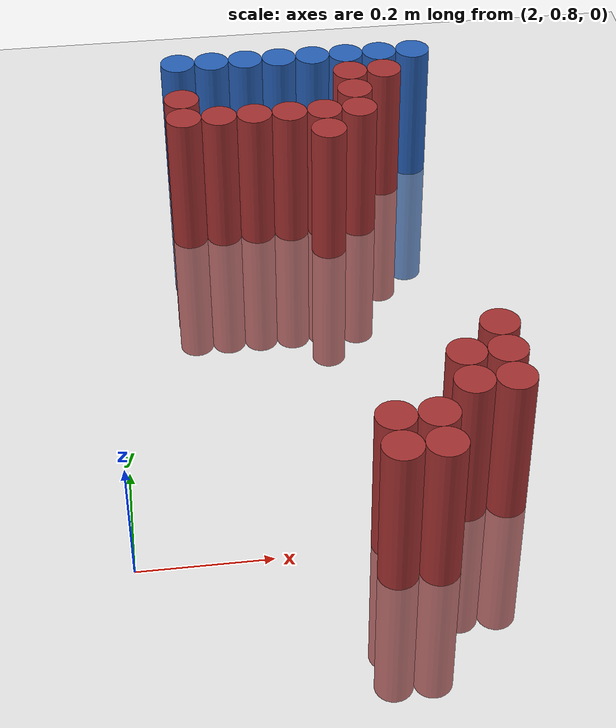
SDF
<sdf version="1.6">
 <world name="default">
  <model name="ground_plane">
   <static>1</static>
   <link name="link">
    <collision name="collision">
     <geometry><plane><normal>0 0 1</normal><size>100 100</size></plane></geometry>
     <surface><friction><ode><mu>100</mu><mu2>50</mu2></ode></friction></surface>
    </collision>
    <visual name="visual">
     <cast_shadows>0</cast_shadows>
     <geometry><plane><normal>0 0 1</normal><size>100 100</size></plane></geometry>
     <material>
      <script><uri>file://media/materials/scripts/gazebo.material</uri><name>Gazebo/Grey</name></script>
     </material>
    </visual>
   </link>
  </model>
  <model name="unit_cylinder_96">
   <static>1</static>
   <pose>2.130000 1.770000 0.000000 0.000000 0.000000 0.000000</pose>
   <link name="link">
    <inertial>
     <mass>1</mass>
     <inertia><ixx>0.145833</ixx><ixy>0</ixy><ixz>0</ixz><iyy>0.145833</iyy><iyz>0</iyz><izz>0.125</izz></inertia>
    </inertial>
    <collision name="collision">
     <geometry><cylinder><radius>0.030000</radius><length>0.5</length></cylinder></geometry>
    </collision>
    <visual name="visual">
     <geometry><cylinder><radius>0.030000</radius><length>0.5</length></cylinder></geometry>
     <material>
      <ambient>0.152000 0.379000 0.720000 1</ambient>
      <diffuse>0.152000 0.379000 0.720000 1</diffuse>
     </material>
     <material>
      <script><name>Gazebo/Grey</name><uri>file://media/materials/scripts/gazebo.material</uri></script>
     </material>
    </visual>
   </link>
  </model>
  <model name="unit_cylinder_97">
   <static>1</static>
   <pose>2.190000 1.770000 0.000000 0.000000 0.000000 0.000000</pose>
   <link name="link">
    <inertial>
     <mass>1</mass>
     <inertia><ixx>0.145833</ixx><ixy>0</ixy><ixz>0</ixz><iyy>0.145833</iyy><iyz>0</iyz><izz>0.125</izz></inertia>
    </inertial>
    <collision name="collision">
     <geometry><cylinder><radius>0.030000</radius><length>0.5</length></cylinder></geometry>
    </collision>
    <visual name="visual">
     <geometry><cylinder><radius>0.030000</radius><length>0.5</length></cylinder></geometry>
     <material>
      <ambient>0.152000 0.379000 0.720000 1</ambient>
      <diffuse>0.152000 0.379000 0.720000 1</diffuse>
     </material>
     <material>
      <script><name>Gazebo/Grey</name><uri>file://media/materials/scripts/gazebo.material</uri></script>
     </material>
    </visual>
   </link>
  </model>
  <model name="unit_cylinder_98">
   <static>1</static>
   <pose>2.250000 1.770000 0.000000 0.000000 0.000000 0.000000</pose>
   <link name="link">
    <inertial>
     <mass>1</mass>
     <inertia><ixx>0.145833</ixx><ixy>0</ixy><ixz>0</ixz><iyy>0.145833</iyy><iyz>0</iyz><izz>0.125</izz></inertia>
    </inertial>
    <collision name="collision">
     <geometry><cylinder><radius>0.030000</radius><length>0.5</length></cylinder></geometry>
    </collision>
    <visual name="visual">
     <geometry><cylinder><radius>0.030000</radius><length>0.5</length></cylinder></geometry>
     <material>
      <ambient>0.152000 0.379000 0.720000 1</ambient>
      <diffuse>0.152000 0.379000 0.720000 1</diffuse>
     </material>
     <material>
      <script><name>Gazebo/Grey</name><uri>file://media/materials/scripts/gazebo.material</uri></script>
     </material>
    </visual>
   </link>
  </model>
  <model name="unit_cylinder_99">
   <static>1</static>
   <pose>2.310000 1.770000 0.000000 0.000000 0.000000 0.000000</pose>
   <link name="link">
    <inertial>
     <mass>1</mass>
     <inertia><ixx>0.145833</ixx><ixy>0</ixy><ixz>0</ixz><iyy>0.145833</iyy><iyz>0</iyz><izz>0.125</izz></inertia>
    </inertial>
    <collision name="collision">
     <geometry><cylinder><radius>0.030000</radius><length>0.5</length></cylinder></geometry>
    </collision>
    <visual name="visual">
     <geometry><cylinder><radius>0.030000</radius><length>0.5</length></cylinder></geometry>
     <material>
      <ambient>0.152000 0.379000 0.720000 1</ambient>
      <diffuse>0.152000 0.379000 0.720000 1</diffuse>
     </material>
     <material>
      <script><name>Gazebo/Grey</name><uri>file://media/materials/scripts/gazebo.material</uri></script>
     </material>
    </visual>
   </link>
  </model>
  <model name="unit_cylinder_100">
   <static>1</static>
   <pose>2.370000 1.770000 0.000000 0.000000 0.000000 0.000000</pose>
   <link name="link">
    <inertial>
     <mass>1</mass>
     <inertia><ixx>0.145833</ixx><ixy>0</ixy><ixz>0</ixz><iyy>0.145833</iyy><iyz>0</iyz><izz>0.125</izz></inertia>
    </inertial>
    <collision name="collision">
     <geometry><cylinder><radius>0.030000</radius><length>0.5</length></cylinder></geometry>
    </collision>
    <visual name="visual">
     <geometry><cylinder><radius>0.030000</radius><length>0.5</length></cylinder></geometry>
     <material>
      <ambient>0.152000 0.379000 0.720000 1</ambient>
      <diffuse>0.152000 0.379000 0.720000 1</diffuse>
     </material>
     <material>
      <script><name>Gazebo/Grey</name><uri>file://media/materials/scripts/gazebo.material</uri></script>
     </material>
    </visual>
   </link>
  </model>
  <model name="unit_cylinder_101">
   <static>1</static>
   <pose>2.430000 1.770000 0.000000 0.000000 0.000000 0.000000</pose>
   <link name="link">
    <inertial>
     <mass>1</mass>
     <inertia><ixx>0.145833</ixx><ixy>0</ixy><ixz>0</ixz><iyy>0.145833</iyy><iyz>0</iyz><izz>0.125</izz></inertia>
    </inertial>
    <collision name="collision">
     <geometry><cylinder><radius>0.030000</radius><length>0.5</length></cylinder></geometry>
    </collision>
    <visual name="visual">
     <geometry><cylinder><radius>0.030000</radius><length>0.5</length></cylinder></geometry>
     <material>
      <ambient>0.152000 0.379000 0.720000 1</ambient>
      <diffuse>0.152000 0.379000 0.720000 1</diffuse>
     </material>
     <material>
      <script><name>Gazebo/Grey</name><uri>file://media/materials/scripts/gazebo.material</uri></script>
     </material>
    </visual>
   </link>
  </model>
  <model name="unit_cylinder_102">
   <static>1</static>
   <pose>2.490000 1.770000 0.000000 0.000000 0.000000 0.000000</pose>
   <link name="link">
    <inertial>
     <mass>1</mass>
     <inertia><ixx>0.145833</ixx><ixy>0</ixy><ixz>0</ixz><iyy>0.145833</iyy><iyz>0</iyz><izz>0.125</izz></inertia>
    </inertial>
    <collision name="collision">
     <geometry><cylinder><radius>0.030000</radius><length>0.5</length></cylinder></geometry>
    </collision>
    <visual name="visual">
     <geometry><cylinder><radius>0.030000</radius><length>0.5</length></cylinder></geometry>
     <material>
      <ambient>0.152000 0.379000 0.720000 1</ambient>
      <diffuse>0.152000 0.379000 0.720000 1</diffuse>
     </material>
     <material>
      <script><name>Gazebo/Grey</name><uri>file://media/materials/scripts/gazebo.material</uri></script>
     </material>
    </visual>
   </link>
  </model>
  <model name="unit_cylinder_103">
   <static>1</static>
   <pose>2.550000 1.770000 0.000000 0.000000 0.000000 0.000000</pose>
   <link name="link">
    <inertial>
     <mass>1</mass>
     <inertia><ixx>0.145833</ixx><ixy>0</ixy><ixz>0</ixz><iyy>0.145833</iyy><iyz>0</iyz><izz>0.125</izz></inertia>
    </inertial>
    <collision name="collision">
     <geometry><cylinder><radius>0.030000</radius><length>0.5</length></cylinder></geometry>
    </collision>
    <visual name="visual">
     <geometry><cylinder><radius>0.030000</radius><length>0.5</length></cylinder></geometry>
     <material>
      <ambient>0.152000 0.379000 0.720000 1</ambient>
      <diffuse>0.152000 0.379000 0.720000 1</diffuse>
     </material>
     <material>
      <script><name>Gazebo/Grey</name><uri>file://media/materials/scripts/gazebo.material</uri></script>
     </material>
    </visual>
   </link>
  </model>
  <model name="unit_cylinder_126">
   <static>1</static>
   <pose>2.430000 1.710000 0.000000 0.000000 0.000000 0.000000</pose>
   <link name="link">
    <inertial>
     <mass>1</mass>
     <inertia><ixx>0.145833</ixx><ixy>0</ixy><ixz>0</ixz><iyy>0.145833</iyy><iyz>0</iyz><izz>0.125</izz></inertia>
    </inertial>
    <collision name="collision">
     <geometry><cylinder><radius>0.030000</radius><length>0.5</length></cylinder></geometry>
    </collision>
    <visual name="visual">
     <geometry><cylinder><radius>0.030000</radius><length>0.5</length></cylinder></geometry>
     <material>
      <ambient>0.648000 0.192000 0.192000 1</ambient>
      <diffuse>0.648000 0.192000 0.192000 1</diffuse>
     </material>
     <material>
      <script><name>Gazebo/Grey</name><uri>file://media/materials/scripts/gazebo.material</uri></script>
     </material>
    </visual>
   </link>
  </model>
  <model name="unit_cylinder_127">
   <static>1</static>
   <pose>2.490000 1.710000 0.000000 0.000000 0.000000 0.000000</pose>
   <link name="link">
    <inertial>
     <mass>1</mass>
     <inertia><ixx>0.145833</ixx><ixy>0</ixy><ixz>0</ixz><iyy>0.145833</iyy><iyz>0</iyz><izz>0.125</izz></inertia>
    </inertial>
    <collision name="collision">
     <geometry><cylinder><radius>0.030000</radius><length>0.5</length></cylinder></geometry>
    </collision>
    <visual name="visual">
     <geometry><cylinder><radius>0.030000</radius><length>0.5</length></cylinder></geometry>
     <material>
      <ambient>0.648000 0.192000 0.192000 1</ambient>
      <diffuse>0.648000 0.192000 0.192000 1</diffuse>
     </material>
     <material>
      <script><name>Gazebo/Grey</name><uri>file://media/materials/scripts/gazebo.material</uri></script>
     </material>
    </visual>
   </link>
  </model>
  <model name="unit_cylinder_139">
   <static>1</static>
   <pose>2.130000 1.650000 0.000000 0.000000 0.000000 0.000000</pose>
   <link name="link">
    <inertial>
     <mass>1</mass>
     <inertia><ixx>0.145833</ixx><ixy>0</ixy><ixz>0</ixz><iyy>0.145833</iyy><iyz>0</iyz><izz>0.125</izz></inertia>
    </inertial>
    <collision name="collision">
     <geometry><cylinder><radius>0.030000</radius><length>0.5</length></cylinder></geometry>
    </collision>
    <visual name="visual">
     <geometry><cylinder><radius>0.030000</radius><length>0.5</length></cylinder></geometry>
     <material>
      <ambient>0.648000 0.192000 0.192000 1</ambient>
      <diffuse>0.648000 0.192000 0.192000 1</diffuse>
     </material>
     <material>
      <script><name>Gazebo/Grey</name><uri>file://media/materials/scripts/gazebo.material</uri></script>
     </material>
    </visual>
   </link>
  </model>
  <model name="unit_cylinder_140">
   <static>1</static>
   <pose>2.430000 1.650000 0.000000 0.000000 0.000000 0.000000</pose>
   <link name="link">
    <inertial>
     <mass>1</mass>
     <inertia><ixx>0.145833</ixx><ixy>0</ixy><ixz>0</ixz><iyy>0.145833</iyy><iyz>0</iyz><izz>0.125</izz></inertia>
    </inertial>
    <collision name="collision">
     <geometry><cylinder><radius>0.030000</radius><length>0.5</length></cylinder></geometry>
    </collision>
    <visual name="visual">
     <geometry><cylinder><radius>0.030000</radius><length>0.5</length></cylinder></geometry>
     <material>
      <ambient>0.648000 0.192000 0.192000 1</ambient>
      <diffuse>0.648000 0.192000 0.192000 1</diffuse>
     </material>
     <material>
      <script><name>Gazebo/Grey</name><uri>file://media/materials/scripts/gazebo.material</uri></script>
     </material>
    </visual>
   </link>
  </model>
  <model name="unit_cylinder_150">
   <static>1</static>
   <pose>2.130000 1.590000 0.000000 0.000000 0.000000 0.000000</pose>
   <link name="link">
    <inertial>
     <mass>1</mass>
     <inertia><ixx>0.145833</ixx><ixy>0</ixy><ixz>0</ixz><iyy>0.145833</iyy><iyz>0</iyz><izz>0.125</izz></inertia>
    </inertial>
    <collision name="collision">
     <geometry><cylinder><radius>0.030000</radius><length>0.5</length></cylinder></geometry>
    </collision>
    <visual name="visual">
     <geometry><cylinder><radius>0.030000</radius><length>0.5</length></cylinder></geometry>
     <material>
      <ambient>0.648000 0.192000 0.192000 1</ambient>
      <diffuse>0.648000 0.192000 0.192000 1</diffuse>
     </material>
     <material>
      <script><name>Gazebo/Grey</name><uri>file://media/materials/scripts/gazebo.material</uri></script>
     </material>
    </visual>
   </link>
  </model>
  <model name="unit_cylinder_151">
   <static>1</static>
   <pose>2.190000 1.590000 0.000000 0.000000 0.000000 0.000000</pose>
   <link name="link">
    <inertial>
     <mass>1</mass>
     <inertia><ixx>0.145833</ixx><ixy>0</ixy><ixz>0</ixz><iyy>0.145833</iyy><iyz>0</iyz><izz>0.125</izz></inertia>
    </inertial>
    <collision name="collision">
     <geometry><cylinder><radius>0.030000</radius><length>0.5</length></cylinder></geometry>
    </collision>
    <visual name="visual">
     <geometry><cylinder><radius>0.030000</radius><length>0.5</length></cylinder></geometry>
     <material>
      <ambient>0.648000 0.192000 0.192000 1</ambient>
      <diffuse>0.648000 0.192000 0.192000 1</diffuse>
     </material>
     <material>
      <script><name>Gazebo/Grey</name><uri>file://media/materials/scripts/gazebo.material</uri></script>
     </material>
    </visual>
   </link>
  </model>
  <model name="unit_cylinder_152">
   <static>1</static>
   <pose>2.250000 1.590000 0.000000 0.000000 0.000000 0.000000</pose>
   <link name="link">
    <inertial>
     <mass>1</mass>
     <inertia><ixx>0.145833</ixx><ixy>0</ixy><ixz>0</ixz><iyy>0.145833</iyy><iyz>0</iyz><izz>0.125</izz></inertia>
    </inertial>
    <collision name="collision">
     <geometry><cylinder><radius>0.030000</radius><length>0.5</length></cylinder></geometry>
    </collision>
    <visual name="visual">
     <geometry><cylinder><radius>0.030000</radius><length>0.5</length></cylinder></geometry>
     <material>
      <ambient>0.648000 0.192000 0.192000 1</ambient>
      <diffuse>0.648000 0.192000 0.192000 1</diffuse>
     </material>
     <material>
      <script><name>Gazebo/Grey</name><uri>file://media/materials/scripts/gazebo.material</uri></script>
     </material>
    </visual>
   </link>
  </model>
  <model name="unit_cylinder_153">
   <static>1</static>
   <pose>2.310000 1.590000 0.000000 0.000000 0.000000 0.000000</pose>
   <link name="link">
    <inertial>
     <mass>1</mass>
     <inertia><ixx>0.145833</ixx><ixy>0</ixy><ixz>0</ixz><iyy>0.145833</iyy><iyz>0</iyz><izz>0.125</izz></inertia>
    </inertial>
    <collision name="collision">
     <geometry><cylinder><radius>0.030000</radius><length>0.5</length></cylinder></geometry>
    </collision>
    <visual name="visual">
     <geometry><cylinder><radius>0.030000</radius><length>0.5</length></cylinder></geometry>
     <material>
      <ambient>0.648000 0.192000 0.192000 1</ambient>
      <diffuse>0.648000 0.192000 0.192000 1</diffuse>
     </material>
     <material>
      <script><name>Gazebo/Grey</name><uri>file://media/materials/scripts/gazebo.material</uri></script>
     </material>
    </visual>
   </link>
  </model>
  <model name="unit_cylinder_154">
   <static>1</static>
   <pose>2.370000 1.590000 0.000000 0.000000 0.000000 0.000000</pose>
   <link name="link">
    <inertial>
     <mass>1</mass>
     <inertia><ixx>0.145833</ixx><ixy>0</ixy><ixz>0</ixz><iyy>0.145833</iyy><iyz>0</iyz><izz>0.125</izz></inertia>
    </inertial>
    <collision name="collision">
     <geometry><cylinder><radius>0.030000</radius><length>0.5</length></cylinder></geometry>
    </collision>
    <visual name="visual">
     <geometry><cylinder><radius>0.030000</radius><length>0.5</length></cylinder></geometry>
     <material>
      <ambient>0.648000 0.192000 0.192000 1</ambient>
      <diffuse>0.648000 0.192000 0.192000 1</diffuse>
     </material>
     <material>
      <script><name>Gazebo/Grey</name><uri>file://media/materials/scripts/gazebo.material</uri></script>
     </material>
    </visual>
   </link>
  </model>
  <model name="unit_cylinder_155">
   <static>1</static>
   <pose>2.430000 1.590000 0.000000 0.000000 0.000000 0.000000</pose>
   <link name="link">
    <inertial>
     <mass>1</mass>
     <inertia><ixx>0.145833</ixx><ixy>0</ixy><ixz>0</ixz><iyy>0.145833</iyy><iyz>0</iyz><izz>0.125</izz></inertia>
    </inertial>
    <collision name="collision">
     <geometry><cylinder><radius>0.030000</radius><length>0.5</length></cylinder></geometry>
    </collision>
    <visual name="visual">
     <geometry><cylinder><radius>0.030000</radius><length>0.5</length></cylinder></geometry>
     <material>
      <ambient>0.648000 0.192000 0.192000 1</ambient>
      <diffuse>0.648000 0.192000 0.192000 1</diffuse>
     </material>
     <material>
      <script><name>Gazebo/Grey</name><uri>file://media/materials/scripts/gazebo.material</uri></script>
     </material>
    </visual>
   </link>
  </model>
  <model name="unit_cylinder_161">
   <static>1</static>
   <pose>2.370000 1.530000 0.000000 0.000000 0.000000 0.000000</pose>
   <link name="link">
    <inertial>
     <mass>1</mass>
     <inertia><ixx>0.145833</ixx><ixy>0</ixy><ixz>0</ixz><iyy>0.145833</iyy><iyz>0</iyz><izz>0.125</izz></inertia>
    </inertial>
    <collision name="collision">
     <geometry><cylinder><radius>0.030000</radius><length>0.5</length></cylinder></geometry>
    </collision>
    <visual name="visual">
     <geometry><cylinder><radius>0.030000</radius><length>0.5</length></cylinder></geometry>
     <material>
      <ambient>0.648000 0.192000 0.192000 1</ambient>
      <diffuse>0.648000 0.192000 0.192000 1</diffuse>
     </material>
     <material>
      <script><name>Gazebo/Grey</name><uri>file://media/materials/scripts/gazebo.material</uri></script>
     </material>
    </visual>
   </link>
  </model>
  <model name="unit_cylinder_179">
   <static>1</static>
   <pose>2.550000 0.990000 0.000000 0.000000 0.000000 0.000000</pose>
   <link name="link">
    <inertial>
     <mass>1</mass>
     <inertia><ixx>0.145833</ixx><ixy>0</ixy><ixz>0</ixz><iyy>0.145833</iyy><iyz>0</iyz><izz>0.125</izz></inertia>
    </inertial>
    <collision name="collision">
     <geometry><cylinder><radius>0.030000</radius><length>0.5</length></cylinder></geometry>
    </collision>
    <visual name="visual">
     <geometry><cylinder><radius>0.030000</radius><length>0.5</length></cylinder></geometry>
     <material>
      <ambient>0.648000 0.192000 0.192000 1</ambient>
      <diffuse>0.648000 0.192000 0.192000 1</diffuse>
     </material>
     <material>
      <script><name>Gazebo/Grey</name><uri>file://media/materials/scripts/gazebo.material</uri></script>
     </material>
    </visual>
   </link>
  </model>
  <model name="unit_cylinder_184">
   <static>1</static>
   <pose>2.490000 0.930000 0.000000 0.000000 0.000000 0.000000</pose>
   <link name="link">
    <inertial>
     <mass>1</mass>
     <inertia><ixx>0.145833</ixx><ixy>0</ixy><ixz>0</ixz><iyy>0.145833</iyy><iyz>0</iyz><izz>0.125</izz></inertia>
    </inertial>
    <collision name="collision">
     <geometry><cylinder><radius>0.030000</radius><length>0.5</length></cylinder></geometry>
    </collision>
    <visual name="visual">
     <geometry><cylinder><radius>0.030000</radius><length>0.5</length></cylinder></geometry>
     <material>
      <ambient>0.648000 0.192000 0.192000 1</ambient>
      <diffuse>0.648000 0.192000 0.192000 1</diffuse>
     </material>
     <material>
      <script><name>Gazebo/Grey</name><uri>file://media/materials/scripts/gazebo.material</uri></script>
     </material>
    </visual>
   </link>
  </model>
  <model name="unit_cylinder_185">
   <static>1</static>
   <pose>2.550000 0.930000 0.000000 0.000000 0.000000 0.000000</pose>
   <link name="link">
    <inertial>
     <mass>1</mass>
     <inertia><ixx>0.145833</ixx><ixy>0</ixy><ixz>0</ixz><iyy>0.145833</iyy><iyz>0</iyz><izz>0.125</izz></inertia>
    </inertial>
    <collision name="collision">
     <geometry><cylinder><radius>0.030000</radius><length>0.5</length></cylinder></geometry>
    </collision>
    <visual name="visual">
     <geometry><cylinder><radius>0.030000</radius><length>0.5</length></cylinder></geometry>
     <material>
      <ambient>0.648000 0.192000 0.192000 1</ambient>
      <diffuse>0.648000 0.192000 0.192000 1</diffuse>
     </material>
     <material>
      <script><name>Gazebo/Grey</name><uri>file://media/materials/scripts/gazebo.material</uri></script>
     </material>
    </visual>
   </link>
  </model>
  <model name="unit_cylinder_192">
   <static>1</static>
   <pose>2.490000 0.870000 0.000000 0.000000 0.000000 0.000000</pose>
   <link name="link">
    <inertial>
     <mass>1</mass>
     <inertia><ixx>0.145833</ixx><ixy>0</ixy><ixz>0</ixz><iyy>0.145833</iyy><iyz>0</iyz><izz>0.125</izz></inertia>
    </inertial>
    <collision name="collision">
     <geometry><cylinder><radius>0.030000</radius><length>0.5</length></cylinder></geometry>
    </collision>
    <visual name="visual">
     <geometry><cylinder><radius>0.030000</radius><length>0.5</length></cylinder></geometry>
     <material>
      <ambient>0.648000 0.192000 0.192000 1</ambient>
      <diffuse>0.648000 0.192000 0.192000 1</diffuse>
     </material>
     <material>
      <script><name>Gazebo/Grey</name><uri>file://media/materials/scripts/gazebo.material</uri></script>
     </material>
    </visual>
   </link>
  </model>
  <model name="unit_cylinder_193">
   <static>1</static>
   <pose>2.550000 0.870000 0.000000 0.000000 0.000000 0.000000</pose>
   <link name="link">
    <inertial>
     <mass>1</mass>
     <inertia><ixx>0.145833</ixx><ixy>0</ixy><ixz>0</ixz><iyy>0.145833</iyy><iyz>0</iyz><izz>0.125</izz></inertia>
    </inertial>
    <collision name="collision">
     <geometry><cylinder><radius>0.030000</radius><length>0.5</length></cylinder></geometry>
    </collision>
    <visual name="visual">
     <geometry><cylinder><radius>0.030000</radius><length>0.5</length></cylinder></geometry>
     <material>
      <ambient>0.648000 0.192000 0.192000 1</ambient>
      <diffuse>0.648000 0.192000 0.192000 1</diffuse>
     </material>
     <material>
      <script><name>Gazebo/Grey</name><uri>file://media/materials/scripts/gazebo.material</uri></script>
     </material>
    </visual>
   </link>
  </model>
  <model name="unit_cylinder_201">
   <static>1</static>
   <pose>2.370000 0.810000 0.000000 0.000000 0.000000 0.000000</pose>
   <link name="link">
    <inertial>
     <mass>1</mass>
     <inertia><ixx>0.145833</ixx><ixy>0</ixy><ixz>0</ixz><iyy>0.145833</iyy><iyz>0</iyz><izz>0.125</izz></inertia>
    </inertial>
    <collision name="collision">
     <geometry><cylinder><radius>0.030000</radius><length>0.5</length></cylinder></geometry>
    </collision>
    <visual name="visual">
     <geometry><cylinder><radius>0.030000</radius><length>0.5</length></cylinder></geometry>
     <material>
      <ambient>0.648000 0.192000 0.192000 1</ambient>
      <diffuse>0.648000 0.192000 0.192000 1</diffuse>
     </material>
     <material>
      <script><name>Gazebo/Grey</name><uri>file://media/materials/scripts/gazebo.material</uri></script>
     </material>
    </visual>
   </link>
  </model>
  <model name="unit_cylinder_202">
   <static>1</static>
   <pose>2.430000 0.810000 0.000000 0.000000 0.000000 0.000000</pose>
   <link name="link">
    <inertial>
     <mass>1</mass>
     <inertia><ixx>0.145833</ixx><ixy>0</ixy><ixz>0</ixz><iyy>0.145833</iyy><iyz>0</iyz><izz>0.125</izz></inertia>
    </inertial>
    <collision name="collision">
     <geometry><cylinder><radius>0.030000</radius><length>0.5</length></cylinder></geometry>
    </collision>
    <visual name="visual">
     <geometry><cylinder><radius>0.030000</radius><length>0.5</length></cylinder></geometry>
     <material>
      <ambient>0.648000 0.192000 0.192000 1</ambient>
      <diffuse>0.648000 0.192000 0.192000 1</diffuse>
     </material>
     <material>
      <script><name>Gazebo/Grey</name><uri>file://media/materials/scripts/gazebo.material</uri></script>
     </material>
    </visual>
   </link>
  </model>
  <model name="unit_cylinder_212">
   <static>1</static>
   <pose>2.370000 0.750000 0.000000 0.000000 0.000000 0.000000</pose>
   <link name="link">
    <inertial>
     <mass>1</mass>
     <inertia><ixx>0.145833</ixx><ixy>0</ixy><ixz>0</ixz><iyy>0.145833</iyy><iyz>0</iyz><izz>0.125</izz></inertia>
    </inertial>
    <collision name="collision">
     <geometry><cylinder><radius>0.030000</radius><length>0.5</length></cylinder></geometry>
    </collision>
    <visual name="visual">
     <geometry><cylinder><radius>0.030000</radius><length>0.5</length></cylinder></geometry>
     <material>
      <ambient>0.648000 0.192000 0.192000 1</ambient>
      <diffuse>0.648000 0.192000 0.192000 1</diffuse>
     </material>
     <material>
      <script><name>Gazebo/Grey</name><uri>file://media/materials/scripts/gazebo.material</uri></script>
     </material>
    </visual>
   </link>
  </model>
  <model name="unit_cylinder_213">
   <static>1</static>
   <pose>2.430000 0.750000 0.000000 0.000000 0.000000 0.000000</pose>
   <link name="link">
    <inertial>
     <mass>1</mass>
     <inertia><ixx>0.145833</ixx><ixy>0</ixy><ixz>0</ixz><iyy>0.145833</iyy><iyz>0</iyz><izz>0.125</izz></inertia>
    </inertial>
    <collision name="collision">
     <geometry><cylinder><radius>0.030000</radius><length>0.5</length></cylinder></geometry>
    </collision>
    <visual name="visual">
     <geometry><cylinder><radius>0.030000</radius><length>0.5</length></cylinder></geometry>
     <material>
      <ambient>0.648000 0.192000 0.192000 1</ambient>
      <diffuse>0.648000 0.192000 0.192000 1</diffuse>
     </material>
     <material>
      <script><name>Gazebo/Grey</name><uri>file://media/materials/scripts/gazebo.material</uri></script>
     </material>
    </visual>
   </link>
  </model>
 </world>
</sdf>
